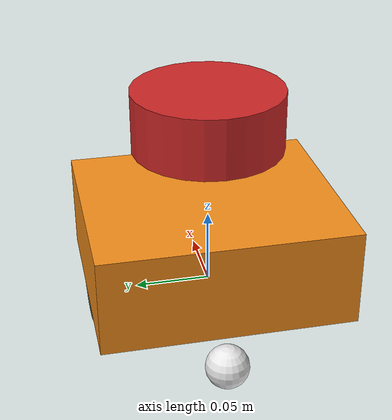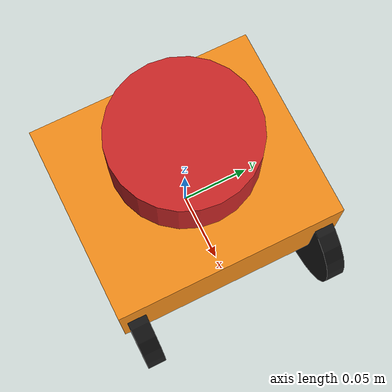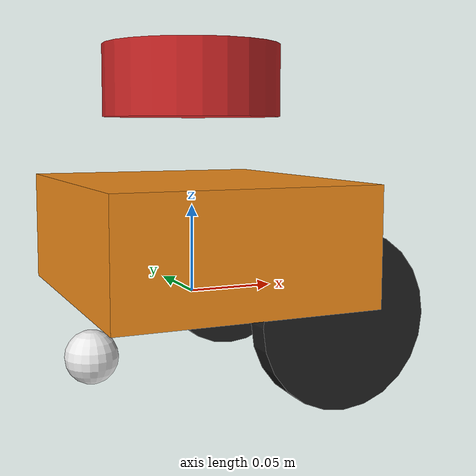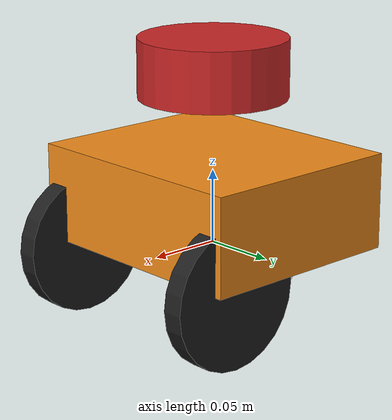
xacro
<?xml version="1.0"?>
<!-- Basic differential drive mobile base -->
<robot xmlns:xacro="http://www.ros.org/wiki/xacro" name="diffdrive_robot">
  <xacro:arg name="prefix" default="" />

  <xacro:include filename="$(find diffdrive_arduino)/urdf/diffbot_description.urdf.xacro" />
  <xacro:include filename="$(find diffdrive_arduino)/urdf/lidar.xacro" />

  <!-- Import Rviz colors -->
  <xacro:include filename="$(find diffdrive_arduino)/urdf/diffbot.materials.xacro" />

  <!-- Import diffbot ros2_control description -->
  <xacro:include filename="$(find diffdrive_arduino)/ros2_control/diffbot.ros2_control.xacro" />

  <xacro:diffbot prefix="$(arg prefix)" />

  <xacro:diffbot_ros2_control name="DiffBot" prefix="$(arg prefix)" />

</robot>

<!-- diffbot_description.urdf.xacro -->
<robot xmlns:xacro="http://www.ros.org/wiki/xacro">

  <xacro:include filename="inertial_macros.xacro"/>
  <xacro:macro name="diffbot" params="prefix">

  <!-- Constants for robot dimensions -->
  <xacro:property name="PI" value="3.1415926535897931"/>
  <xacro:property name="base_mass" value="0.3" /> <!-- arbitrary value for base mass -->
  <xacro:property name="base_width" value="0.145" />
  <xacro:property name="base_length" value="0.168" />
  <xacro:property name="base_height" value="0.065" />
  <xacro:property name="wheel_mass" value="0.3" /> <!-- arbitrary value for wheel mass -->
  <xacro:property name="wheel_len" value="0.014" />
  <xacro:property name="wheel_radius" value="0.0475" />
  <xacro:property name="wheel_xoff" value="0.054"/>
  <xacro:property name="wheel_zoff" value="-0.005"/>
  <xacro:property name="caster_wheel_mass" value="0.1" /> <!-- arbitrary value for caster wheel mass -->
  <xacro:property name="caster_wheel_radius" value="0.015" />
  <xacro:property name="caster_xoff" value="-0.06"/>

  <!-- Base Link -->
  <link name="${prefix}base_link">
    <collision>
      <origin xyz="0 0 0" rpy="0 0 0"/>
      <geometry>
        <box size="${base_width} ${base_length} ${base_height}"/>
      </geometry>
    </collision>

    <visual>
      <origin xyz="0 0 ${base_height/2}" rpy="0 0 0"/>
      <geometry>
        <box size="${base_width} ${base_length} ${base_height}"/>
      </geometry>
      <material name="orange"/>
    </visual>

    <inertial>
      <origin xyz="0 0 0" rpy="0 0 0"/>
      <mass value="${base_mass}"/>
      <inertia
        ixx="${base_mass / 12.0 * (base_length*base_length + base_height*base_height)}" ixy="0.0" ixz="0.0"
        iyy="${base_mass / 12.0 * (base_height*base_height + base_width*base_width)}" iyz="0.0"
        izz="${base_mass / 12.0 * (base_width*base_width + base_length*base_length)}"/>
      </inertial>
    </link>

    <joint name="${prefix}left_wheel_joint" type="continuous">
      <parent link="${prefix}base_link"/>
      <child link="${prefix}left_wheel"/>
      <origin xyz="${wheel_xoff} -${base_width/2} ${wheel_zoff}" rpy="0 0 0"/>
      <axis xyz="0 1 0"/>
      <dynamics damping="0.2"/>
    </joint>

    <!-- left wheel Link -->
    <link name="${prefix}left_wheel">
      <collision>
        <origin xyz="0 0 0" rpy="${PI/2} 0 0"/>
        <geometry>
          <cylinder length="${wheel_len}" radius="${wheel_radius}"/>
        </geometry>
      </collision>

      <visual>
        <origin xyz="0 0 0" rpy="${PI/2} 0 0"/>
        <geometry>
          <cylinder length="${wheel_len}" radius="${wheel_radius}"/>
        </geometry>
        <material name="black"/>
      </visual>

      <inertial>
        <origin xyz="0 0 0" rpy="${PI/2} 0 0"/>
        <mass value="${wheel_mass}"/>
        <inertia
          ixx="${wheel_mass / 12.0 * (3*wheel_radius + wheel_len*wheel_len)}" ixy="0.0" ixz="0.0"
          iyy="${wheel_mass / 12.0 * wheel_radius*wheel_radius}" iyz="0.0"
          izz="${wheel_mass / 12.0 * wheel_radius*wheel_radius}"/>
        </inertial>
      </link>

    <joint name="${prefix}right_wheel_joint" type="continuous">
      <parent link="${prefix}base_link"/>
      <child link="${prefix}right_wheel"/>
      <origin xyz="${wheel_xoff} ${base_width/2} ${wheel_zoff}" rpy="0 0 0"/>
      <axis xyz="0 1 0"/>
      <dynamics damping="0.2"/>
    </joint>

    <!-- right wheel Link -->
    <link name="${prefix}right_wheel">
      <collision>
        <origin xyz="0 0 0" rpy="${PI/2} 0 0"/>
        <geometry>
          <cylinder length="${wheel_len}" radius="${wheel_radius}"/>
        </geometry>
      </collision>

      <visual>
        <origin xyz="0 0 0" rpy="${PI/2} 0 0"/>
        <geometry>
          <cylinder length="${wheel_len}" radius="${wheel_radius}"/>
        </geometry>
        <material name="black"/>
      </visual>

      <inertial>
        <origin xyz="0 0 0" rpy="${PI/2} 0 0"/>
        <mass value="${wheel_mass}"/>
        <inertia
          ixx="${wheel_mass / 12.0 * (3*wheel_radius + wheel_len*wheel_len)}" ixy="0.0" ixz="0.0"
          iyy="${wheel_mass / 12.0 * wheel_radius*wheel_radius}" iyz="0.0"
          izz="${wheel_mass / 12.0 * wheel_radius*wheel_radius}"/>
        </inertial>
      </link>

    <joint name="${prefix}caster_wheel_joint" type="fixed">
      <parent link="${prefix}base_link"/>
      <child link="${prefix}caster_wheel"/>
      <origin xyz="${caster_xoff} 0 ${-(base_height/2)}" rpy="0 0 0"/>
    </joint>

    <!-- caster rear wheel Link -->
    <link name="${prefix}caster_wheel">
      <collision>
        <origin xyz="0 0 0" rpy="0 0 0"/>
        <geometry>
          <sphere radius="${caster_wheel_radius}"/>
        </geometry>
      </collision>

      <visual>
        <origin xyz="0 0 0" rpy="0 0 0"/>
        <geometry>
          <sphere radius="${caster_wheel_radius}"/>
        </geometry>
        <material name="white"/>
      </visual>

      <inertial>
        <origin xyz="0 0 0" rpy="0 0 0"/>
        <mass value="${caster_wheel_mass}"/>
        <inertia
          ixx="${caster_wheel_mass * 0.4 * (caster_wheel_radius * caster_wheel_radius)}" ixy="0.0" ixz="0.0"
          iyy="${caster_wheel_mass * 0.4 * (caster_wheel_radius * caster_wheel_radius)}" iyz="0.0"
          izz="${caster_wheel_mass * 0.4 * (caster_wheel_radius * caster_wheel_radius)}"/>
        </inertial>
      </link>

  </xacro:macro>

</robot>

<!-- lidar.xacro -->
<robot xmlns:xacro="http://www.ros.org/wiki/xacro" >

    <joint name="laser_joint" type="fixed">
        <parent link="base_link"/>
        <child link="laser_frame"/>
        <origin xyz="0 0 0.12" rpy="0 0 0"/>
    </joint>

    <link name="laser_frame">
        <visual>
            <geometry>
                <cylinder radius="0.05" length="0.04"/>
            </geometry>
            <material name="red"/>
        </visual>
        <collision>
            <geometry>
                <cylinder radius="0.05" length="0.04"/>
            </geometry>
        </collision>
        <xacro:inertial_cylinder mass="0.1" length="0.04" radius="0.05">
            <origin xyz="0 0 0" rpy="0 0 0"/>
        </xacro:inertial_cylinder>
    </link>

</robot>
